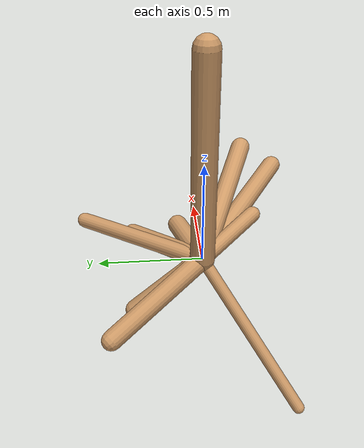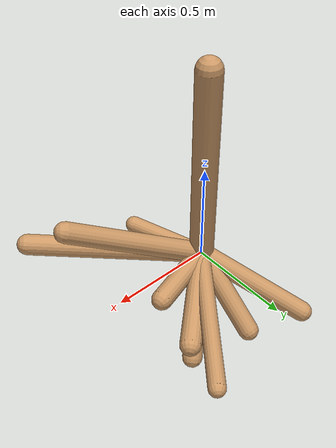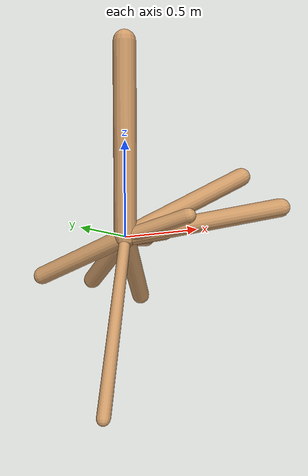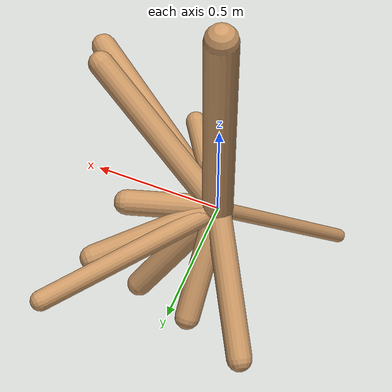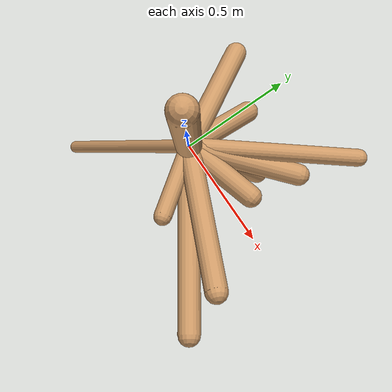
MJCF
<!--
                    joint_number: 10
                    -->
                    <mujoco model="randomrobot">
                        <compiler angle="degree" coordinate="global" inertiafromgeom="true"/>
                        <default>
                        <joint armature="0.01" damping=".1" limited="true"/>
                        <geom conaffinity="0" condim="3" contype="1" density="1000" friction="0.8 .1 .1" rgba="0.8 0.6 .4 1"/>
                        </default>
                        <option integrator="RK4" timestep="0.002"/>
                        <worldbody>
                    <body name='torso' pos='0.00 0.00 0.85'><geom fromto='0 0 0 0.00 0.00 1.00' name='torso_geom' size='0.06' type='capsule'/><inertial mass='0.3'/><body name='L0_D1' pos='0.00 0.00 0.87'><joint axis='1 0 0' name='L0_D1_joint' pos='0 0 0' range='26.37 166.76' type='hinge'/><geom fromto='0 0 0 -0.01 0.34 -0.29' name='L0_D1_geom' size='0.05' type='capsule'/><inertial mass='0.3'/><body name='L1_D0' pos='-0.01 0.26 -0.22'><joint axis='0 0 1' name='L1_D0_joint' pos='0 0 0' range='48.10 52.59' type='hinge'/><geom fromto='0 0 0 0.47 0.60 -0.04' name='L1_D0_geom' size='0.04' type='capsule'/><inertial mass='0.3'/></body></body><body name='L2_D1' pos='0.00 0.00 0.27'><joint axis='1 0 0' name='L2_D1_joint' pos='0 0 0' range='11.48 86.27' type='hinge'/><geom fromto='0 0 0 0.68 -0.46 0.15' name='L2_D1_geom' size='0.05' type='capsule'/><inertial mass='0.3'/><body name='L3_D0' pos='0.41 -0.28 0.09'><joint axis='0 0 1' name='L3_D0_joint' pos='0 0 0' range='33.87 112.87' type='hinge'/><geom fromto='0 0 0 0.59 -0.26 0.31' name='L3_D0_geom' size='0.05' type='capsule'/><inertial mass='0.3'/></body><body name='L4_D0' pos='0.57 -0.39 0.13'><joint axis='0 0 1' name='L4_D0_joint' pos='0 0 0' range='107.24 119.16' type='hinge'/><geom fromto='0 0 0 -0.40 -0.45 -0.65' name='L4_D0_geom' size='0.03' type='capsule'/><inertial mass='0.3'/></body><body name='L5_D0' pos='0.02 -0.02 0.00'><joint axis='1 0 0' name='L5_D0_joint' pos='0 0 0' range='43.49 146.64' type='hinge'/><geom fromto='0 0 0 0.25 0.22 -0.40' name='L5_D0_geom' size='0.05' type='capsule'/><inertial mass='0.3'/></body></body><body name='L6_D1' pos='0.00 0.00 0.21'><joint axis='1 0 0' name='L6_D1_joint' pos='0 0 0' range='42.50 146.31' type='hinge'/><geom fromto='0 0 0 -0.27 0.45 -0.25' name='L6_D1_geom' size='0.05' type='capsule'/><inertial mass='0.3'/><body name='L7_D0' pos='-0.21 0.35 -0.20'><joint axis='1 0 0' name='L7_D0_joint' pos='0 0 0' range='99.36 129.48' type='hinge'/><geom fromto='0 0 0 0.38 0.34 -0.08' name='L7_D0_geom' size='0.05' type='capsule'/><inertial mass='0.3'/></body><body name='L8_D0' pos='-0.15 0.25 -0.14'><joint axis='0 1 0' name='L8_D0_joint' pos='0 0 0' range='15.62 76.71' type='hinge'/><geom fromto='0 0 0 0.34 0.10 -0.01' name='L8_D0_geom' size='0.05' type='capsule'/><inertial mass='0.3'/></body><body name='L9_D0' pos='-0.26 0.43 -0.24'><joint axis='0 1 0' name='L9_D0_joint' pos='0 0 0' range='142.29 171.45' type='hinge'/><geom fromto='0 0 0 0.20 -0.27 0.12' name='L9_D0_geom' size='0.04' type='capsule'/><inertial mass='0.3'/></body></body></body>
                        </worldbody>
                    </mujoco>
